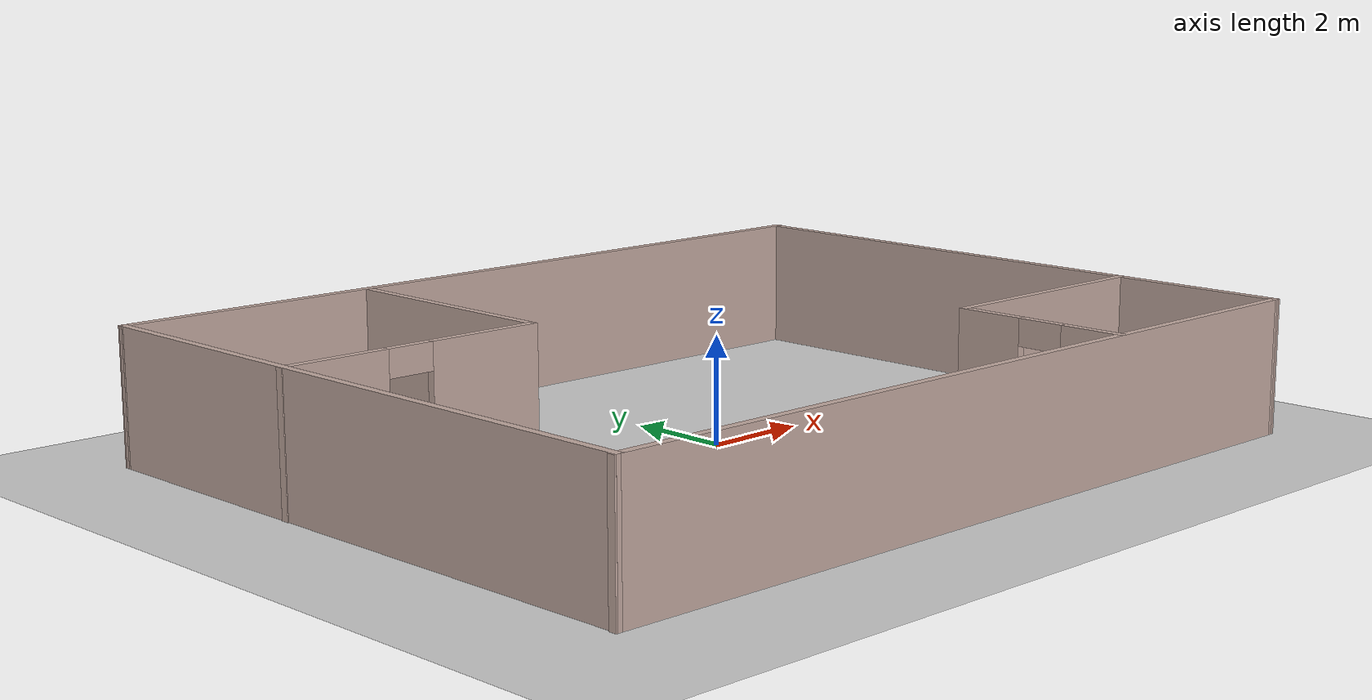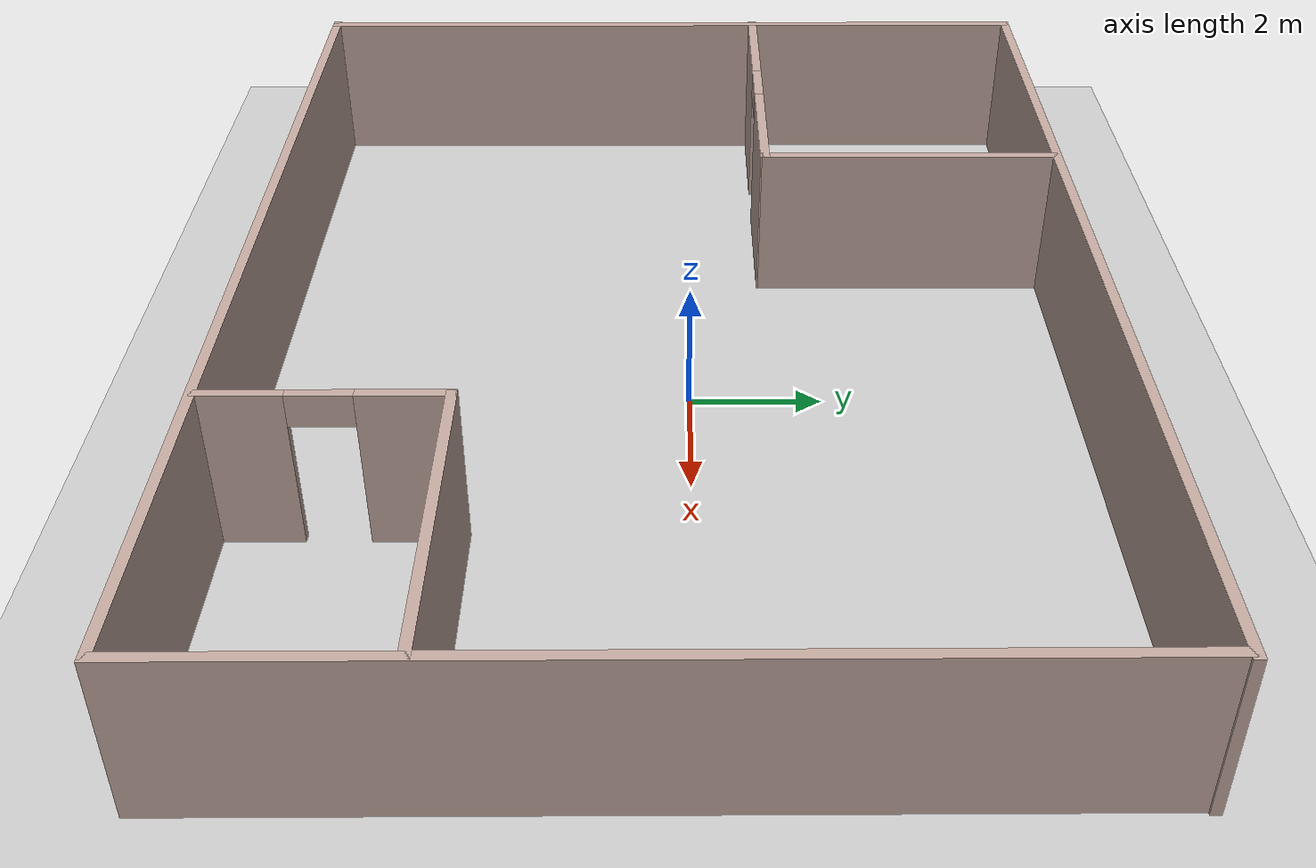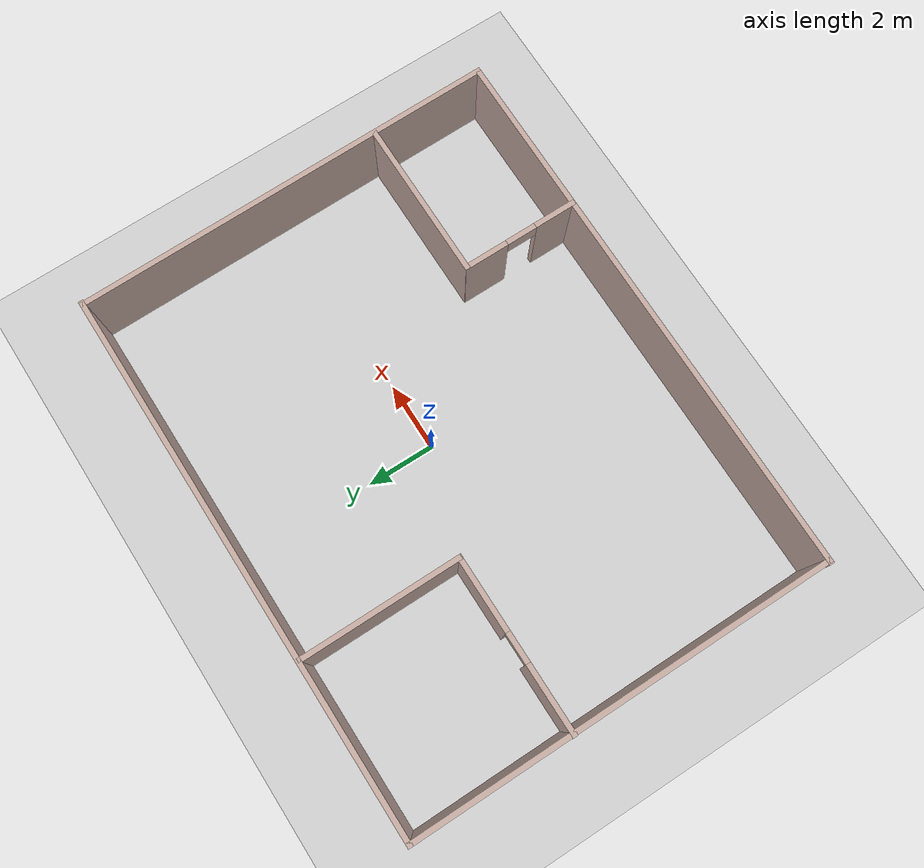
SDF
<sdf version="1.7">
 <world name="default">
  <light name="sun" type="directional">
   <pose>0 0 10 0 -0 0</pose>
   <diffuse>0.8 0.8 0.8 1</diffuse>
   <specular>0.2 0.2 0.2 1</specular>
   <attenuation>
    <range>1000</range>
    <constant>0.9</constant>
    <linear>0.01</linear>
    <quadratic>0.001</quadratic>
   </attenuation>
   <direction>-0.5 0.1 -0.9</direction>
   <spot><inner_angle>0</inner_angle><outer_angle>0</outer_angle><falloff>0</falloff></spot>
  </light>
  <model name="ground_plane">
   <static>1</static>
   <link name="link">
    <collision name="collision">
     <geometry><plane><normal>0 0 1</normal><size>100 100</size></plane></geometry>
     <surface><friction><ode><mu>100</mu><mu2>50</mu2></ode></friction></surface>
    </collision>
    <visual name="visual">
     <cast_shadows>0</cast_shadows>
     <geometry><plane><normal>0 0 1</normal><size>100 100</size></plane></geometry>
     <material>
      <script><uri>file://media/materials/scripts/gazebo.material</uri><name>Gazebo/Grey</name></script>
     </material>
    </visual>
   </link>
  </model>
  <gravity>0 0 -9.8</gravity>
  <magnetic_field>6e-06 2.3e-05 -4.2e-05</magnetic_field>
  <atmosphere type="adiabatic"/>
  <physics type="ode">
   <max_step_size>0.001</max_step_size>
   <real_time_factor>1</real_time_factor>
   <real_time_update_rate>1000</real_time_update_rate>
  </physics>
  <scene><ambient>0.4 0.4 0.4 1</ambient><background>0.7 0.7 0.7 1</background><shadows>1</shadows></scene>
  <audio><device>default</device></audio>
  <spherical_coordinates>
   <surface_model>EARTH_WGS84</surface_model>
   <latitude_deg>0</latitude_deg>
   <longitude_deg>0</longitude_deg>
   <elevation>0</elevation>
   <heading_deg>0</heading_deg>
  </spherical_coordinates>
  <model name="secret_room">
   <pose>-0.293847 -0.283217 0 0 -0 0</pose>
   <link name="Wall_14">
    <collision name="Wall_14_Collision">
     <geometry><box><size>12.5012 0.15 2.5</size></box></geometry>
     <pose>0 0 1.25 0 -0 0</pose>
    </collision>
    <visual name="Wall_14_Visual">
     <pose>0 0 1.25 0 -0 0</pose>
     <geometry><box><size>12.5012 0.15 2.5</size></box></geometry>
     <material>
      <script><uri>file://media/materials/scripts/gazebo.material</uri><name>Gazebo/Grey</name></script>
      <ambient>0.760784 0.662745 0.627451 1</ambient>
     </material>
     <meta><layer>0</layer></meta>
    </visual>
    <pose>-8.00255 -0.015295 0 0 -0 1.5736</pose>
   </link>
   <link name="Wall_15">
    <collision name="Wall_15_Collision">
     <geometry><box><size>16.1586 0.15 2.5</size></box></geometry>
     <pose>0 0 1.25 0 -0 0</pose>
    </collision>
    <visual name="Wall_15_Visual">
     <pose>0 0 1.25 0 -0 0</pose>
     <geometry><box><size>16.1586 0.15 2.5</size></box></geometry>
     <material>
      <script><uri>file://media/materials/scripts/gazebo.material</uri><name>Gazebo/Grey</name></script>
      <ambient>0.760784 0.662745 0.627451 1</ambient>
     </material>
     <meta><layer>0</layer></meta>
    </visual>
    <pose>-0.015565 6.19086 0 0 -0 0</pose>
   </link>
   <link name="Wall_16">
    <collision name="Wall_16_Collision">
     <geometry><box><size>12.5318 0.15 2.5</size></box></geometry>
     <pose>0 0 1.25 0 -0 0</pose>
    </collision>
    <visual name="Wall_16_Visual">
     <pose>0 0 1.25 0 -0 0</pose>
     <geometry><box><size>12.5318 0.15 2.5</size></box></geometry>
     <material>
      <script><uri>file://media/materials/scripts/gazebo.material</uri><name>Gazebo/Grey</name></script>
      <ambient>0.760784 0.662745 0.627451 1</ambient>
     </material>
     <meta><layer>0</layer></meta>
    </visual>
    <pose>7.98844 0 0 0 -0 -1.56516</pose>
   </link>
   <link name="Wall_17">
    <collision name="Wall_17_Collision">
     <geometry><box><size>16.1586 0.15 2.5</size></box></geometry>
     <pose>0 0 1.25 0 -0 0</pose>
    </collision>
    <visual name="Wall_17_Visual">
     <pose>0 0 1.25 0 -0 0</pose>
     <geometry><box><size>16.1586 0.15 2.5</size></box></geometry>
     <material>
      <script><uri>file://media/materials/scripts/gazebo.material</uri><name>Gazebo/Grey</name></script>
      <ambient>0.760784 0.662745 0.627451 1</ambient>
     </material>
     <meta><layer>0</layer></meta>
    </visual>
    <pose>-0.016138 -6.19086 0 0 -0 3.14159</pose>
   </link>
   <link name="Wall_20">
    <pose>-5.48659 1.50599 0 0 -0 0</pose>
    <visual name="Wall_20_Visual_0">
     <pose>-1.57696 0 1.25 0 -0 0</pose>
     <geometry><box><size>2.07041 0.15 2.5</size></box></geometry>
     <material>
      <script><uri>file://media/materials/scripts/gazebo.material</uri><name>Gazebo/Grey</name></script>
      <ambient>0.760784 0.662745 0.627451 1</ambient>
     </material>
     <meta><layer>0</layer></meta>
    </visual>
    <collision name="Wall_20_Collision_0">
     <geometry><box><size>2.07041 0.15 2.5</size></box></geometry>
     <pose>-1.57696 0 1.25 0 -0 0</pose>
    </collision>
    <visual name="Wall_20_Visual_1">
     <pose>1.48521 0 1.25 0 -0 0</pose>
     <geometry><box><size>2.25391 0.15 2.5</size></box></geometry>
     <material>
      <script><uri>file://media/materials/scripts/gazebo.material</uri><name>Gazebo/Grey</name></script>
      <ambient>0.760784 0.662745 0.627451 1</ambient>
     </material>
     <meta><layer>0</layer></meta>
    </visual>
    <collision name="Wall_20_Collision_1">
     <geometry><box><size>2.25391 0.15 2.5</size></box></geometry>
     <pose>1.48521 0 1.25 0 -0 0</pose>
    </collision>
    <visual name="Wall_20_Visual_2">
     <pose>-0.091749 0 2.25 0 -0 0</pose>
     <geometry><box><size>0.9 0.15 0.5</size></box></geometry>
     <material>
      <script><uri>file://media/materials/scripts/gazebo.material</uri><name>Gazebo/Grey</name></script>
      <ambient>0.760784 0.662745 0.627451 1</ambient>
     </material>
     <meta><layer>0</layer></meta>
    </visual>
    <collision name="Wall_20_Collision_2">
     <geometry><box><size>0.9 0.15 0.5</size></box></geometry>
     <pose>-0.091749 0 2.25 0 -0 0</pose>
    </collision>
   </link>
   <link name="Wall_21">
    <collision name="Wall_21_Collision">
     <geometry><box><size>4.75 0.15 2.5</size></box></geometry>
     <pose>0 0 1.25 0 -0 0</pose>
    </collision>
    <visual name="Wall_21_Visual">
     <pose>0 0 1.25 0 -0 0</pose>
     <geometry><box><size>4.75 0.15 2.5</size></box></geometry>
     <material>
      <script><uri>file://media/materials/scripts/gazebo.material</uri><name>Gazebo/Grey</name></script>
      <ambient>0.760784 0.662745 0.627451 1</ambient>
     </material>
     <meta><layer>0</layer></meta>
    </visual>
    <pose>-2.94943 3.82912 0 0 -0 1.5708</pose>
   </link>
   <link name="Wall_24">
    <collision name="Wall_24_Collision">
     <geometry><box><size>4.75 0.15 2.5</size></box></geometry>
     <pose>0 0 1.25 0 -0 0</pose>
    </collision>
    <visual name="Wall_24_Visual">
     <pose>0 0 1.25 0 -0 0</pose>
     <geometry><box><size>4.75 0.15 2.5</size></box></geometry>
     <material>
      <script><uri>file://media/materials/scripts/gazebo.material</uri><name>Gazebo/Grey</name></script>
      <ambient>0.760784 0.662745 0.627451 1</ambient>
     </material>
     <meta><layer>0</layer></meta>
    </visual>
    <pose>5.70307 -2.82316 0 0 -0 0</pose>
   </link>
   <link name="Wall_26">
    <pose>3.39421 -4.5039 0 0 -0 1.5708</pose>
    <visual name="Wall_26_Visual_0">
     <pose>-1.11578 0 1.25 0 -0 0</pose>
     <geometry><box><size>1.26844 0.15 2.5</size></box></geometry>
     <material>
      <script><uri>file://media/materials/scripts/gazebo.material</uri><name>Gazebo/Grey</name></script>
      <ambient>0.760784 0.662745 0.627451 1</ambient>
     </material>
     <meta><layer>0</layer></meta>
    </visual>
    <collision name="Wall_26_Collision_0">
     <geometry><box><size>1.26844 0.15 2.5</size></box></geometry>
     <pose>-1.11578 0 1.25 0 -0 0</pose>
    </collision>
    <visual name="Wall_26_Visual_1">
     <pose>1.08422 0 1.25 0 -0 0</pose>
     <geometry><box><size>1.33156 0.15 2.5</size></box></geometry>
     <material>
      <script><uri>file://media/materials/scripts/gazebo.material</uri><name>Gazebo/Grey</name></script>
      <ambient>0.760784 0.662745 0.627451 1</ambient>
     </material>
     <meta><layer>0</layer></meta>
    </visual>
    <collision name="Wall_26_Collision_1">
     <geometry><box><size>1.33156 0.15 2.5</size></box></geometry>
     <pose>1.08422 0 1.25 0 -0 0</pose>
    </collision>
    <visual name="Wall_26_Visual_2">
     <pose>-0.031556 0 2.25 0 -0 0</pose>
     <geometry><box><size>0.9 0.15 0.5</size></box></geometry>
     <material>
      <script><uri>file://media/materials/scripts/gazebo.material</uri><name>Gazebo/Grey</name></script>
      <ambient>0.760784 0.662745 0.627451 1</ambient>
     </material>
     <meta><layer>0</layer></meta>
    </visual>
    <collision name="Wall_26_Collision_2">
     <geometry><box><size>0.9 0.15 0.5</size></box></geometry>
     <pose>-0.031556 0 2.25 0 -0 0</pose>
    </collision>
   </link>
   <static>1</static>
  </model>
 </world>
</sdf>
